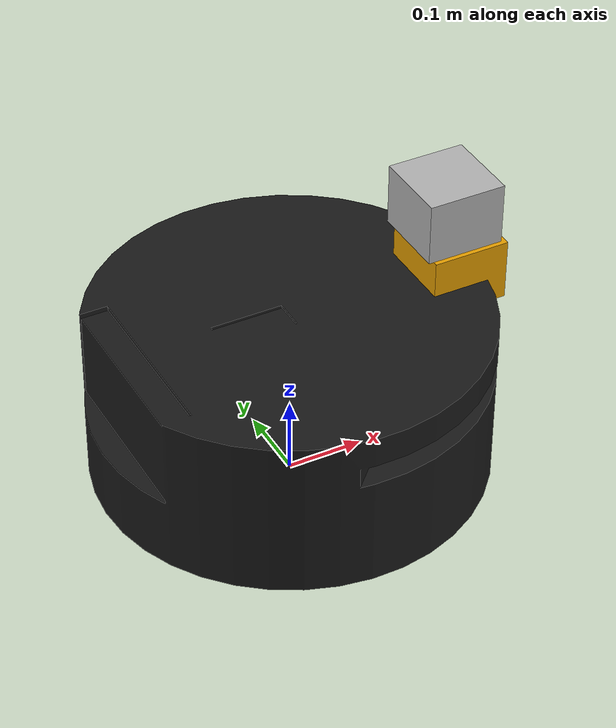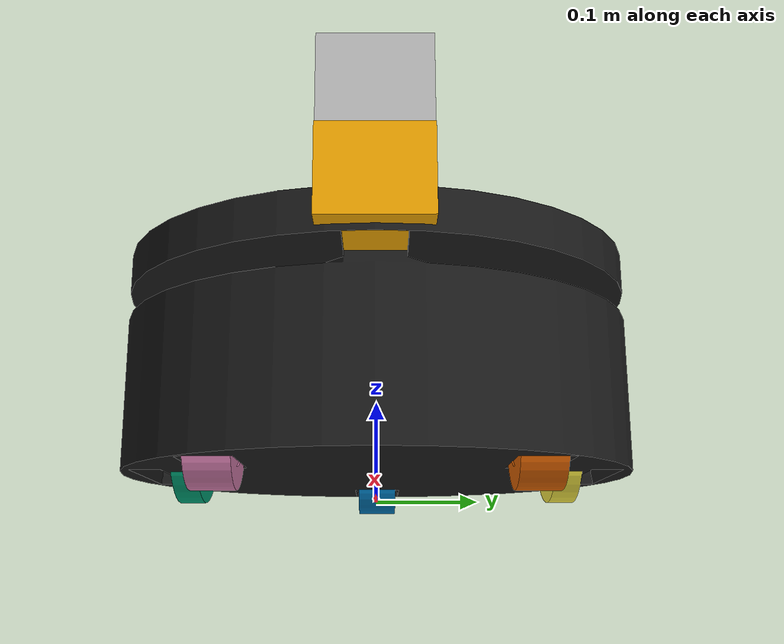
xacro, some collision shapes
<?xml version="1.0"?>
<robot name="rb1_base_platform" xmlns:xacro="http://www.ros.org/wiki/xacro">

	<!-- Imported elements -->

	<!-- First we import all posible elements defined in the urdf.xacro files. All these elements are defined as macro:xacros -->

	<!-- Import RB1 base elements -->
    <xacro:include filename="$(find rb1_base_description)/urdf/bases/rb1_base.urdf.xacro" />

	<!-- Import RB1 wheels -->
	<xacro:include filename="$(find rb1_base_description)/urdf/wheels/rubber_wheel.urdf.xacro" />
	<xacro:include filename="$(find rb1_base_description)/urdf/wheels/omni_wheel.urdf.xacro" />

	<!-- Import all available sensors -->
	<xacro:include filename="$(find rb1_base_description)/urdf/sensors/all_sensors.urdf.xacro" />

	<!-- Global parameters -->
	<xacro:property name="PI" value="3.1415926535897931"/>

	<!-- Wheel parameters -->
	<xacro:property name="wheel_offset_x" value="0.0" />    <!-- x,y,z in translation from base_link to the center of the wheel -->
	<xacro:property name="wheel_offset_y" value="0.183" />
	<xacro:property name="wheel_offset_z" value="0.051" />

	<!-- Castor paramters -->
	<xacro:property name="omni_back_x" value="0.185" />
	<xacro:property name="omni_back_y" value="0.0" />
	<!-- xacro:property name="omni_back_z" value="0.028" / -->
	<xacro:property name="omni_back_z" value="0.0265" />
	<xacro:property name="omni_front_x" value="0.133" />
	<xacro:property name="omni_front_y" value="0.142" />
	<!-- xacro:property name="omni_front_z" value="0.028" / -->
	<xacro:property name="omni_front_z" value="0.0265" />

	<!-- Flag to select the high or low quality model -->
	<xacro:property name="hq" value="true" />

	<!-- Robots Elements -->

	<!-- Here we create the robot elements using the xacro:macros imported at the beggining of this file -->

	<!-- RB-1 base -->
	<xacro:rb1_base name="rb1_base" publish_bf="true" hq="${hq}" />

	<!-- Gazebo ros control plugins -->
	<xacro:ros_control/>

	<!-- Gazebo skid steering plugins -->
	<xacro:diff_drive/>

	<!-- WHEELS -->
	<xacro:rubber_wheel name="right" parent="base_link" reflect="false" hq="${hq}">
		<origin xyz="${wheel_offset_x} -${wheel_offset_y} ${wheel_offset_z}" rpy="0 0 0"/>
	</xacro:rubber_wheel>

	<xacro:rubber_wheel name="left" parent="base_link" reflect="true" hq="${hq}">
		<origin xyz="${wheel_offset_x} ${wheel_offset_y} ${wheel_offset_z}" rpy="0 0 0"/>
	</xacro:rubber_wheel>

    <!-- OMNI DIRECTIONAL WHEELS -->
	<xacro:omni_wheel name="omni_back" parent="base_link" hq="${hq}">
		<origin xyz="-${omni_back_x} ${omni_back_y} ${omni_back_z}" rpy="0 0 0"/>
	</xacro:omni_wheel>

	<xacro:omni_wheel name="omni_front_left" parent="base_link" hq="${hq}">
		<origin xyz="${omni_front_x} ${omni_front_y} ${omni_front_z}" rpy="0 0 0"/>
	</xacro:omni_wheel>

	<xacro:omni_wheel name="omni_front_right" parent="base_link" hq="${hq}">
		<origin xyz="${omni_front_x} -${omni_front_y} ${omni_front_z}" rpy="0 0 0"/>
	</xacro:omni_wheel>

	<!-- SENSORS -->
	<xacro:sensor_hokuyo_utm30lx name="hokuyo" parent="base_link">
		<origin xyz="0.210 0.0 0.305" rpy="0 0 0"/>
	</xacro:sensor_hokuyo_utm30lx>

    <xacro:sensor_hokuyo_urg04lx name="hokuyo1" parent="base_link">
        <origin xyz="0.220 0.0 0.170" rpy="0 3.1416 3.1416"/>
    </xacro:sensor_hokuyo_urg04lx>

	<xacro:sensor_imu name="imu" parent="base_link">
		<origin xyz="-0.18 0.0 0.170" rpy="0 0 0"/>
	</xacro:sensor_imu>

</robot>

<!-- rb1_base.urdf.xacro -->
<robot name="rb1_base" xmlns:xacro="http://www.ros.org/wiki/xacro">

  <xacro:include filename="$(find rb1_base_description)/urdf/bases/rb1_base.gazebo.xacro" />

  <xacro:macro name="rb1_base" params="name publish_bf hq">

  <!-- Robot mechanical and motor parameters -->
  <xacro:property name="PI" value="3.1415926535897931"/>
  <xacro:property name="wheel_width" value="0.175" />

  <!-- BASE FOOTPRINT -->
  <xacro:if value="${publish_bf}">
    <link name="base_footprint">
      <visual>
          <origin xyz="0 0 0" rpy="0 0 0" />
          <geometry>
             <box size="0.001 0.001 0.001" />
          </geometry>
      </visual>
    </link>

    <joint name="base_footprint_joint" type="fixed">
      <!-- origin xyz="0 0 ${wheel_radius}" rpy="0 0 0" / -->
       <!-- origin xyz="0 0 ${wheel_radius - wheel_offset_z}" rpy="0 0 0" / -->
       <origin xyz="0 0 0.025" rpy="0 0 0" />
      <parent link="base_footprint"/>
      <child link="base_link" />
    </joint>
  </xacro:if>

  <!-- BASE_LINK -->
  <link name="base_link">
    <inertial>
      <mass value="25.0" />
      <origin xyz="0 0 0" />
      <inertia  ixx="1.0" ixy="0.0"  ixz="0.0"  iyy="1.0"  iyz="0.0"  izz="1.0" />
    </inertial>
    <visual>
       <origin xyz="0 0 0" rpy="0 0 0" />
       <xacro:if value="${hq}">
       <geometry>
	     <mesh filename="package://rb1_base_description/meshes/bases/rb1_base.dae"/>
       </geometry>
       </xacro:if>
       <xacro:unless value="${hq}">
       <geometry>
       <mesh filename="package://rb1_base_description/meshes/bases/rb1_base.stl"/>
       </geometry>
       </xacro:unless>
       <material name="darkgrey">
         <color rgba="0.1 0.1 0.1 1"/>
       </material>
    </visual>
  </link>

  </xacro:macro>
</robot>

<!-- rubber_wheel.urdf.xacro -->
<robot name="wheel" xmlns:xacro="http://www.ros.org/wiki/xacro">

  <xacro:property name="M_PI" value="3.1415926535897931" />
  <!-- Wheels -->
  <property name="wheel_radius" value="0.076" />
  <property name="wheel_height" value="0.050" />
  <property name="wheel_mass" value="1.0" /> <!-- in kg-->

  <xacro:macro name="cylinder_inertia" params="m r h">
    <inertia  ixx="${m*(3*r*r+h*h)/12}" ixy = "0" ixz = "0"
              iyy="${m*(3*r*r+h*h)/12}" iyz = "0"
              izz="${m*r*r/2}" />
  </xacro:macro>

  <xacro:macro name="rubber_wheel" params="name parent *origin reflect hq">

<!--WHEEL TIRE -->
    <joint name="joint_${name}_wheel" type="continuous">
      <parent link="${parent}"/>
      <child link="${name}_wheel"/>
      <insert_block name="origin" />
      <axis xyz="0 1 0" rpy="0 0 0" />
      <limit effort="100" velocity="100"/>
      <joint_properties damping="0.0" friction="0.0"/>
    </joint>

    <link name="${name}_wheel">
      <visual>
        <!-- HIGH RESOLUTION WHEELS -->
        <xacro:if value="${hq}">
          <origin xyz="0 0 0" rpy="0 0 0" />
          <geometry>
						<xacro:if value="${reflect}">
							<mesh filename="package://rb1_base_description/meshes/wheels/wheel_rubber_6inch.dae" />
						</xacro:if>
						<xacro:unless value="${reflect}">
							<mesh filename="package://rb1_base_description/meshes/wheels/wheel_rubber_6inch.dae" />
						</xacro:unless>
          </geometry>
        </xacro:if>
       <!-- LOW RESOLUTION WHEELS -->
        <xacro:unless value="${hq}">
          <origin xyz="0 0 0" rpy="${M_PI/2} 0 0" />
          <geometry>
            <cylinder length="${wheel_height}" radius="${wheel_radius}" />
          </geometry>
        </xacro:unless>
      </visual>

      <collision>
		<origin xyz="0 0 0" rpy="${M_PI/2} 0 0" />
        <geometry>
          <cylinder length="${wheel_height}" radius="${wheel_radius}" />
        </geometry>
      </collision>
      <inertial>
        <mass value="${wheel_mass}" />
        <origin xyz="0 0 0" />
        <cylinder_inertia  m="${wheel_mass}" r="${wheel_radius}" h="${wheel_height}" />
      </inertial>
    </link>

    <!-- Transmission is important to link the joints and the controller (see summit_xl_control/config/summit_xl_control.yaml)-->
    <transmission name="${name}_wheel_joint_trans">
      <type>transmission_interface/SimpleTransmission</type>
      <joint name="joint_${name}_wheel" />
      <actuator name="${name}_wheel_joint_motor">
        <hardwareInterface>EffortJointInterface</hardwareInterface>
        <mechanicalReduction>1</mechanicalReduction>
      </actuator>
    </transmission>

    <gazebo reference="${name}_wheel">
			<mu1 value="5.0"/>
			<mu2 value="0.5"/>
			<kp value="10000000.0" />
			<kd value="1.0" />
			<fdir1 value="1 0 0"/>
      <turnGravityOff>false</turnGravityOff>
    </gazebo>

  </xacro:macro>

</robot>

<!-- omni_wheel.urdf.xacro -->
<robot name="omnidirectional_wheel" xmlns:xacro="http://www.ros.org/wiki/xacro">

  <xacro:property name="M_PI" value="3.1415926535897931" />
  <!-- Wheels -->
  <property name="omni_wheel_radius" value="0.051" />
  <property name="omni_wheel_height" value="0.025" />
  <property name="omni_wheel_mass" value="0.3" /> <!-- in kg-->

  <xacro:macro name="cylinder_inertia" params="m r h">
    <inertia  ixx="${m*(3*r*r+h*h)/12}" ixy = "0" ixz = "0"
              iyy="${m*(3*r*r+h*h)/12}" iyz = "0"
              izz="${m*r*r/2}" />
  </xacro:macro>

  <xacro:macro name="omni_wheel" params="name parent *origin hq">

<!--WHEEL TIRE -->
    <!-- joint name="joint_${name}_wheel" type="continuous" -->
    <joint name="joint_${name}_wheel" type="fixed">
      <parent link="${parent}"/>
      <child link="${name}_wheel"/>
      <insert_block name="origin" />
      <axis xyz="0 1 0" rpy="0 0 0" />
      <limit effort="100" velocity="100"/>
      <joint_properties damping="0.0" friction="0.0"/>
    </joint>

    <link name="${name}_wheel">
      <visual>
        <!-- HIGH RESOLUTION WHEELS -->
        <xacro:if value="${hq}">
          <origin xyz="0 0 0" rpy="0 0 0" />
          <geometry>
				<mesh filename="package://rb1_base_description/meshes/wheels/wheel_omni_4inch.dae" />
          </geometry>
        </xacro:if>
       <!-- LOW RESOLUTION WHEELS -->
        <xacro:unless value="${hq}">
          <origin xyz="0 0 0" rpy="${M_PI/2} 0 0" />
          <geometry>
            <cylinder length="${omni_wheel_height}" radius="${omni_wheel_radius}" />
          </geometry>
        </xacro:unless>
      </visual>

      <collision>
      <origin xyz="0 0 0" rpy="${M_PI/2} 0 0" />
        <geometry>
          <cylinder length="${omni_wheel_height}" radius="${omni_wheel_radius}" />
        </geometry>
      </collision>

      <inertial>
        <mass value="${wheel_mass}" />
        <origin xyz="0 0 0" />
        <cylinder_inertia  m="${omni_wheel_mass}" r="${omni_wheel_radius}" h="${omni_wheel_height}" />
        <!-- inertia  ixx="0.001" ixy="0.0"  ixz="0.0"  iyy="0.001"  iyz="0.0"  izz="0.001" / -->
      </inertial>
    </link>

    <gazebo reference="${name}_wheel">
			<mu1 value="0.0"/>
			<mu2 value="0.0"/>
			<kp value="10000000.0" />
			<kd value="1.0" />
			<fdir1 value="1 0 0"/>
            <turnGravityOff>false</turnGravityOff>
    </gazebo>

  </xacro:macro>

</robot>

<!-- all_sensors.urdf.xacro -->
<robot name="all_sensors" xmlns:xacro="http://ros.org/wiki/xacro">

	<!-- This file unifies all sensors that can be used on simulation, defined as xacro:macros -->

	<!-- Hokuyo urg04lx -->
	<xacro:include filename="$(find rb1_base_description)/urdf/sensors/hokuyo_urg04lx.urdf.xacro" />

	<!-- Hokuyo utm30lx -->
	<xacro:include filename="$(find rb1_base_description)/urdf/sensors/hokuyo_utm30lx.urdf.xacro" />

	<!-- Imu -->
	<xacro:include filename="$(find rb1_base_description)/urdf/sensors/imu.urdf.xacro" />

	<!-- Kinect -->
	<xacro:include filename="$(find rb1_base_description)/urdf/sensors/kinect.urdf.xacro" />

</robot>

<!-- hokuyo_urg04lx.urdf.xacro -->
<robot name="sensor_hokuyo_urg04lx" xmlns:xacro="http://ros.org/wiki/xacro">

  <xacro:macro name="sensor_hokuyo_urg04lx" params="name parent *origin">

    <joint name="${name}_laser_joint" type="fixed">
      <insert_block name="origin" />
      <parent link="${parent}"/>
      <child link="${name}_laser_link"/>
	</joint>

	<link name="${name}_laser_link">
		<collision>
			<origin xyz="0 0 -0.05" rpy="0 0 0"/>
			<geometry>
				<box size="0.1 0.1 0.08"/>
			</geometry>
		</collision>

		<visual>
			<origin xyz="0 0 -0.05" rpy="0 0 0"/>
			<geometry>
	     		<mesh filename="package://rb1_base_description/meshes/sensors/hokuyo_urg_04lx.dae"/>
			</geometry>
		</visual>

		<inertial>
			<mass value="1e-5" />
			<origin xyz="0 0 0" rpy="0 0 0"/>
			<inertia ixx="1e-6" ixy="0" ixz="0" iyy="1e-6" iyz="0" izz="1e-6" />
		</inertial>
  </link>

  <!-- Hokuyo sensor for simulation -->
  <sensor_hokuyo_gazebo/>
  </xacro:macro>
  <xacro:macro name="sensor_hokuyo_gazebo">
    <gazebo reference="${name}_laser_link">
			<sensor type="ray" name="${name}_sensor">
				<pose>0 0 0 0 0 0</pose>
				<visualize>false</visualize>
				<update_rate>10</update_rate>
				<ray>
					<scan>
						<horizontal>
							<samples>681</samples>
							<resolution>1</resolution>
							<min_angle>-2.0943951</min_angle>
							<max_angle>2.0943951</max_angle>
						</horizontal>
					</scan>
					<range>
						<min>0.02</min>
						<max>5.6</max>
						<resolution>0.00628318531</resolution>
					</range>
					<noise>
						<type>gaussian</type>
						<mean>0.0</mean>
						<stddev>0.01</stddev>
					</noise>
				</ray>
				<plugin name="gazebo_ros_head_hokuyo_controller" filename="libgazebo_ros_laser.so">
					<topicName>${name}/scan</topicName>
					<frameName>${name}_laser_link</frameName>
				</plugin>
			</sensor>
	</gazebo>
  </xacro:macro>

</robot>

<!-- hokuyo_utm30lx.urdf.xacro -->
<robot name="sensor_hokuyo_utm30lx" xmlns:xacro="http://ros.org/wiki/xacro">

  <xacro:macro name="sensor_hokuyo_utm30lx" params="name parent *origin">

    <joint name="${name}_laser_joint" type="fixed">
      <!-- FRONT MOUNT  -->
      <!-- origin xyz="0.29 0 0.1" -->
      <!-- TOP MOUNT -->
      <!-- origin xyz="0.0 0.0 0.325"-->
      <insert_block name="origin" />
      <parent link="${parent}"/>
      <child link="${name}_laser_link"/>
	</joint>

	<link name="${name}_laser_link">
		<collision>
			<origin xyz="0 0 0" rpy="0 0 0"/>
			<geometry>
				<box size="0.1 0.1 0.08"/>
			</geometry>
		</collision>

		<visual>
			<origin xyz="0 0 0" rpy="0 0 0"/>
			<geometry>
	     		<mesh filename="package://rb1_base_description/meshes/sensors/hokuyo_utm_30lx.dae"/>
			</geometry>
		</visual>

		<inertial>
			<mass value="1e-5" />
			<origin xyz="0 0 0" rpy="0 0 0"/>
			<inertia ixx="1e-6" ixy="0" ixz="0" iyy="1e-6" iyz="0" izz="1e-6" />
		</inertial>
	</link>

	<!-- Hokuyo sensor for simulation -->
	<sensor_hokuyo_gazebo/>

  </xacro:macro>

  <xacro:macro name="sensor_hokuyo_gazebo">
    <gazebo reference="${name}_laser_link">
			<sensor type="ray" name="${name}_sensor">
				<pose>0 0 0 0 0 0</pose>
				<visualize>false</visualize>
				<update_rate>30</update_rate>
				<ray>
					<scan>
						<horizontal>
							<samples>1081</samples>
							<resolution>1</resolution>
							<min_angle>2.35619449</min_angle>  <!-- +/-135 deg -->
							<max_angle>-2.35619449</max_angle>
						</horizontal>
					</scan>
					<range>
						<min>0.10</min>
						<max>30.0</max>
						<resolution>0.01</resolution>
					</range>
					<noise>
						<type>gaussian</type>
						<mean>0.0</mean>
						<stddev>0.01</stddev>
					</noise>
				</ray>
				<plugin name="gazebo_ros_head_hokuyo_controller" filename="libgazebo_ros_laser.so">
					<topicName>${name}/scan</topicName>
					<frameName>${name}_laser_link</frameName>
				</plugin>
			</sensor>
		</gazebo>
  </xacro:macro>

</robot>

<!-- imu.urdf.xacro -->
<robot name="sensor_imu" xmlns:xacro="http://ros.org/wiki/xacro">

  <xacro:macro name="sensor_imu" params="name parent *origin">

	  <joint name="${name}_joint" type="fixed">
	      <axis xyz="1 0 0"/>
	      <!--origin xyz="0 0 0.2825"/-->
	      <insert_block name="origin"/>
	      <parent link="${parent}"/>
	      <child link="${name}_link"/>
	  </joint>

	  <link name="${name}_link">
	      <inertial>
	        <mass value="0.001"/>
	        <origin rpy="0 0 0" xyz="0 0 0"/>
	        <inertia ixx="0.0001" ixy="0" ixz="0" iyy="0.000001" iyz="0" izz="0.0001"/>
	      </inertial>
	      <visual>
	        <origin rpy="0 0 0" xyz="0 0 0"/>
	        <geometry>
	          <box size="0.001 0.001 0.001"/>
	        </geometry>
	      </visual>
	      <collision>
	        <origin rpy="0 0 0" xyz="0 0 0"/>
	        <geometry>
	          <box size=".001 .001 .001"/>
	        </geometry>
	      </collision>
	  </link>

	  <gazebo>
	    <plugin name="ros_imu" filename="libgazebo_ros_imu.so">
	       <topicName>rb1/imu_data</topicName>
				 <bodyName>imu_link</bodyName>
				 <serviceName>rb1/imu_service</serviceName>
	       <gaussianNoise>0.005</gaussianNoise>
	    </plugin>
	  </gazebo>

  </xacro:macro>

</robot>

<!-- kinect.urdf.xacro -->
<robot name="sensor_kinect" xmlns:xacro="http://ros.org/wiki/xacro">

  <xacro:property name="M_PI" value="3.1415926535897931" />

  <xacro:macro name="sensor_kinect" params="name parent *origin">

    <joint name="${name}_cam_joint" type="fixed">
	    <insert_block name="origin" />
	    <parent link="${parent}"/>
	    <child link="${name}_cam_link"/>
	  </joint>
	  <link name="${name}_cam_link">
	    <visual>
	     <origin xyz="0 0 0" rpy="0 0 ${M_PI/2}"/>
	      <geometry>
	       <mesh filename="package://rb1_base_description/meshes/sensors/kinect.dae"/>
	      </geometry>
	    </visual>
		  <collision>
	      <origin xyz="0.0 0.0 0.0" rpy="0 0 0"/>
		    <geometry>
		      <box size="0.07271 0.27794 0.073"/>
		    </geometry>
		  </collision>
	    <inertial>
	      <mass value="0.001" />
	      <origin xyz="0 0 0" />
	      <inertia ixx="0.0001" ixy="0.0" ixz="0.0"
	               iyy="0.0001" iyz="0.0"
	               izz="0.0001" />
	    </inertial>
	  </link>

    <joint name="${name}_cam_rgb_joint" type="fixed">
      <origin xyz="0.031 -0.0125 0.016" rpy="0 0 0"/>
      <parent link="${name}_cam_link"/>
      <child link="${name}_cam_rgb_frame" />
    </joint>
    <link name="${name}_cam_rgb_frame">
      <inertial>
        <mass value="0.001" />
        <origin xyz="0 0 0" />
        <inertia ixx="0.0001" ixy="0.0" ixz="0.0"
                 iyy="0.0001" iyz="0.0"
                 izz="0.0001" />
      </inertial>
    </link>

    <joint name="${name}_cam_rgb_optical_joint" type="fixed">
      <origin xyz="0 0 0" rpy="${-M_PI/2} 0 ${-M_PI/2}" />
      <parent link="${name}_cam_rgb_frame" />
      <child link="${name}_cam_rgb_optical_frame" />
    </joint>
    <link name="${name}_cam_rgb_optical_frame">
      <inertial>
        <mass value="0.001" />
        <origin xyz="0 0 0" />
        <inertia ixx="0.0001" ixy="0.0" ixz="0.0"
                 iyy="0.0001" iyz="0.0"
                 izz="0.0001" />
      </inertial>
    </link>

		<joint name="${name}_cam_depth_joint" type="fixed">
		  <origin xyz="0 0.025 0" rpy="0 0 0" />
		  <parent link="${name}_cam_rgb_frame" />
		  <child link="${name}_cam_depth_frame" />
		</joint>
		<link name="${name}_cam_depth_frame">
	    <inertial>
	      <mass value="0.001" />
	      <origin xyz="0 0 0" />
	      <inertia ixx="0.0001" ixy="0.0" ixz="0.0"
	               iyy="0.0001" iyz="0.0"
	               izz="0.0001" />
	    </inertial>
		</link>
		<joint name="${name}_cam_depth_optical_joint" type="fixed">
		  <origin xyz="0 0 0" rpy="${-M_PI/2} 0 ${-M_PI/2}" />
		  <parent link="${name}_cam_depth_frame" />
		  <child link="${name}_cam_depth_optical_frame" />
		</joint>
		<link name="${name}_cam_depth_optical_frame">
	    <inertial>
	      <mass value="0.001" />
	      <origin xyz="0 0 0" />
	      <inertia ixx="0.0001" ixy="0.0" ixz="0.0"
	               iyy="0.0001" iyz="0.0"
	               izz="0.0001" />
	    </inertial>
		</link>

		<!-- Kinect sensor for simulation -->
	  <sensor_kinect_gazebo/>

  </xacro:macro>

  <xacro:macro name="sensor_kinect_gazebo">

    <gazebo reference="${name}_cam_depth_frame">
      <sensor type="depth" name="cam">
        <always_on>true</always_on>
        <update_rate>20.0</update_rate>
        <camera>
          <horizontal_fov>${60.0*M_PI/180.0}</horizontal_fov>
          <image>
            <format>R8G8B8</format>
            <width>640</width>
            <height>480</height>
          </image>
          <clip>
            <near>0.05</near>
            <far>8.0</far>
          </clip>
        </camera>
        <plugin name="kinect_cam_controller" filename="libgazebo_ros_openni_kinect.so">
          <cameraName>${name}</cameraName>
          <alwaysOn>true</alwaysOn>
          <updateRate>10</updateRate>
          <imageTopicName>rgb/image_raw</imageTopicName>
          <depthImageTopicName>depth/image_raw</depthImageTopicName>
          <pointCloudTopicName>depth/points</pointCloudTopicName>
          <cameraInfoTopicName>rgb/camera_info</cameraInfoTopicName>
          <depthImageCameraInfoTopicName>depth/camera_info</depthImageCameraInfoTopicName>
          <frameName>${name}_cam_depth_optical_frame</frameName>
          <baseline>0.1</baseline>
          <distortion_k1>0.0</distortion_k1>
          <distortion_k2>0.0</distortion_k2>
          <distortion_k3>0.0</distortion_k3>
          <distortion_t1>0.0</distortion_t1>
          <distortion_t2>0.0</distortion_t2>
          <pointCloudCutoff>0.4</pointCloudCutoff>
        </plugin>
      </sensor>
    </gazebo>

  </xacro:macro>

</robot>
